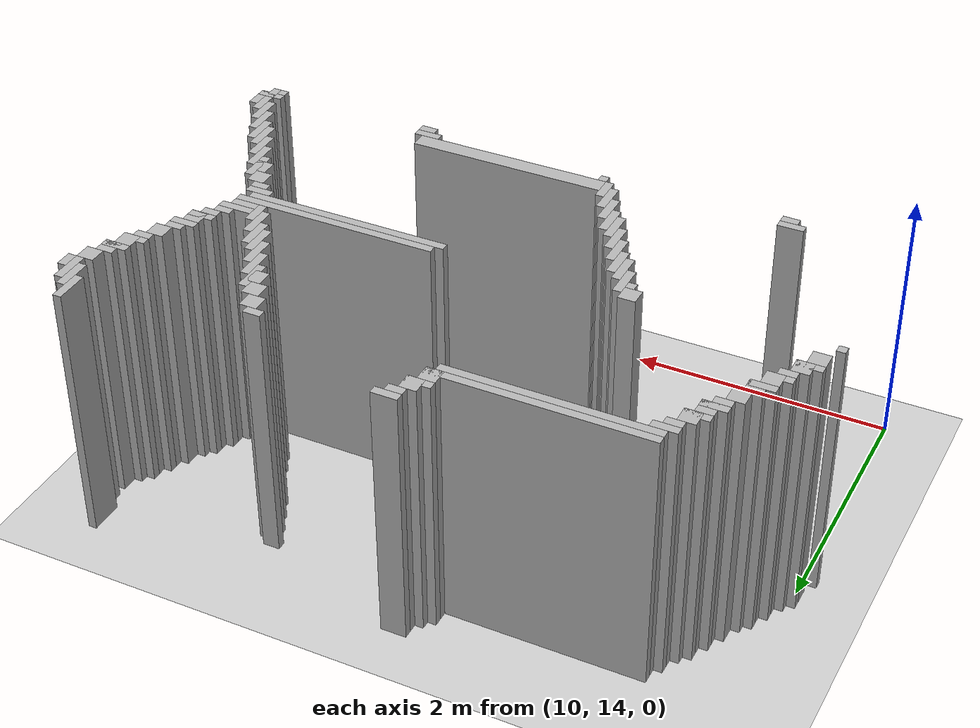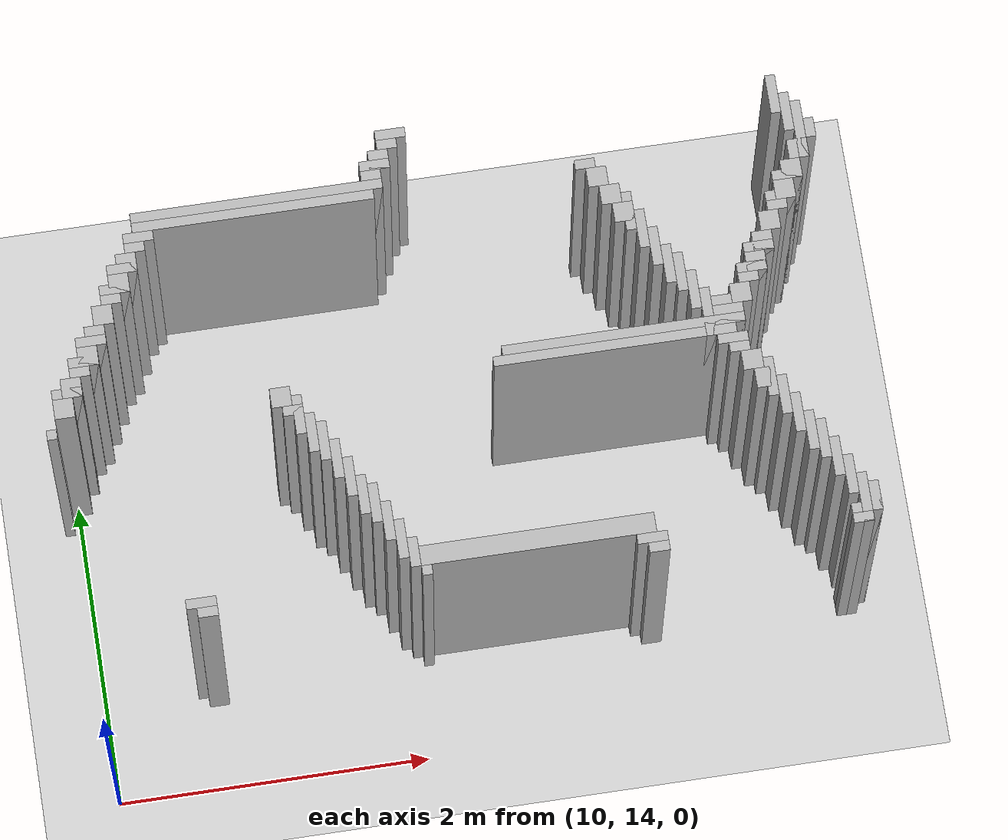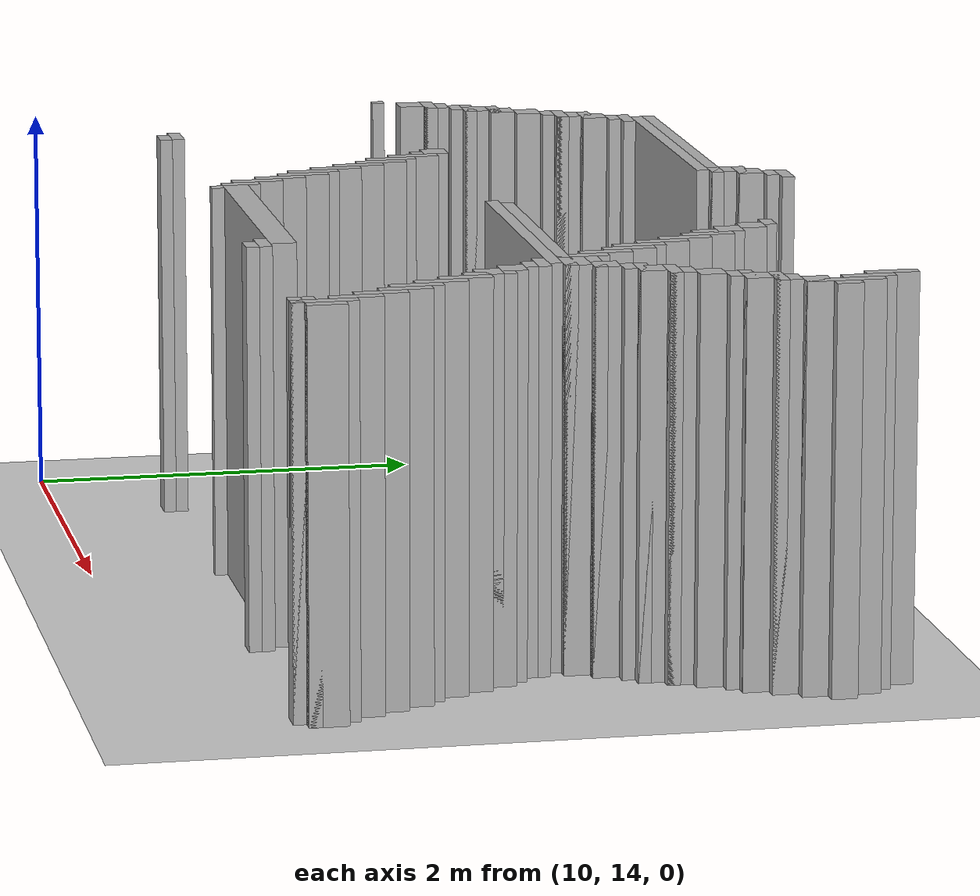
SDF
<sdf version="1.6">
 <world name="slam_world">
  <model name="ground_plane">
   <static>true</static>
   <link name="link">
    <collision name="collision">
     <geometry><plane><normal>0 0 1</normal><size>100 100</size></plane></geometry>
    </collision>
    <visual name="visual">
     <geometry><plane><normal>0 0 1</normal><size>100 100</size></plane></geometry>
     <material>
      <ambient>0.8 0.8 0.8 1</ambient>
      <diffuse>0.8 0.8 0.8 1</diffuse>
      <specular>0.8 0.8 0.8 1</specular>
     </material>
    </visual>
   </link>
  </model>
  <model name="wall_675">
   <static>true</static>
   <pose>12.287234042553191 17.52127659574468 1.0 0 0 0</pose>
   <link name="link">
    <collision name="collision">
     <geometry><box><size>0.19148936170212766 0.06382978723404255 2.0</size></box></geometry>
    </collision>
    <visual name="visual">
     <geometry><box><size>0.19148936170212766 0.06382978723404255 2.0</size></box></geometry>
     <material><ambient>0.5 0.5 0.5 1</ambient><diffuse>0.7 0.7 0.7 1</diffuse></material>
    </visual>
   </link>
  </model>
  <model name="wall_676">
   <static>true</static>
   <pose>14.712765957446807 17.425531914893615 1.0 0 0 0</pose>
   <link name="link">
    <collision name="collision">
     <geometry><box><size>0.06382978723404255 0.2553191489361702 2.0</size></box></geometry>
    </collision>
    <visual name="visual">
     <geometry><box><size>0.06382978723404255 0.2553191489361702 2.0</size></box></geometry>
     <material><ambient>0.5 0.5 0.5 1</ambient><diffuse>0.7 0.7 0.7 1</diffuse></material>
    </visual>
   </link>
  </model>
  <model name="wall_680">
   <static>true</static>
   <pose>12.25531914893617 17.457446808510635 1.0 0 0 0</pose>
   <link name="link">
    <collision name="collision">
     <geometry><box><size>0.1276595744680851 0.06382978723404255 2.0</size></box></geometry>
    </collision>
    <visual name="visual">
     <geometry><box><size>0.1276595744680851 0.06382978723404255 2.0</size></box></geometry>
     <material><ambient>0.5 0.5 0.5 1</ambient><diffuse>0.7 0.7 0.7 1</diffuse></material>
    </visual>
   </link>
  </model>
  <model name="wall_688">
   <static>true</static>
   <pose>12.191489361702127 17.361702127659573 1.0 0 0 0</pose>
   <link name="link">
    <collision name="collision">
     <geometry><box><size>0.1276595744680851 0.1276595744680851 2.0</size></box></geometry>
    </collision>
    <visual name="visual">
     <geometry><box><size>0.1276595744680851 0.1276595744680851 2.0</size></box></geometry>
     <material><ambient>0.5 0.5 0.5 1</ambient><diffuse>0.7 0.7 0.7 1</diffuse></material>
    </visual>
   </link>
  </model>
  <model name="wall_689">
   <static>true</static>
   <pose>14.77659574468085 17.29787234042553 1.0 0 0 0</pose>
   <link name="link">
    <collision name="collision">
     <geometry><box><size>0.06382978723404255 0.2553191489361702 2.0</size></box></geometry>
    </collision>
    <visual name="visual">
     <geometry><box><size>0.06382978723404255 0.2553191489361702 2.0</size></box></geometry>
     <material><ambient>0.5 0.5 0.5 1</ambient><diffuse>0.7 0.7 0.7 1</diffuse></material>
    </visual>
   </link>
  </model>
  <model name="wall_695">
   <static>true</static>
   <pose>12.159574468085106 17.329787234042552 1.0 0 0 0</pose>
   <link name="link">
    <collision name="collision">
     <geometry><box><size>0.19148936170212766 0.06382978723404255 2.0</size></box></geometry>
    </collision>
    <visual name="visual">
     <geometry><box><size>0.19148936170212766 0.06382978723404255 2.0</size></box></geometry>
     <material><ambient>0.5 0.5 0.5 1</ambient><diffuse>0.7 0.7 0.7 1</diffuse></material>
    </visual>
   </link>
  </model>
  <model name="wall_696">
   <static>true</static>
   <pose>14.840425531914892 17.170212765957444 1.0 0 0 0</pose>
   <link name="link">
    <collision name="collision">
     <geometry><box><size>0.06382978723404255 0.3829787234042553 2.0</size></box></geometry>
    </collision>
    <visual name="visual">
     <geometry><box><size>0.06382978723404255 0.3829787234042553 2.0</size></box></geometry>
     <material><ambient>0.5 0.5 0.5 1</ambient><diffuse>0.7 0.7 0.7 1</diffuse></material>
    </visual>
   </link>
  </model>
  <model name="wall_700">
   <static>true</static>
   <pose>12.127659574468083 17.23404255319149 1.0 0 0 0</pose>
   <link name="link">
    <collision name="collision">
     <geometry><box><size>0.1276595744680851 0.1276595744680851 2.0</size></box></geometry>
    </collision>
    <visual name="visual">
     <geometry><box><size>0.1276595744680851 0.1276595744680851 2.0</size></box></geometry>
     <material><ambient>0.5 0.5 0.5 1</ambient><diffuse>0.7 0.7 0.7 1</diffuse></material>
    </visual>
   </link>
  </model>
  <model name="wall_706">
   <static>true</static>
   <pose>11.393617021276595 17.202127659574465 1.0 0 0 0</pose>
   <link name="link">
    <collision name="collision">
     <geometry><box><size>1.5957446808510638 0.06382978723404255 2.0</size></box></geometry>
    </collision>
    <visual name="visual">
     <geometry><box><size>1.5957446808510638 0.06382978723404255 2.0</size></box></geometry>
     <material><ambient>0.5 0.5 0.5 1</ambient><diffuse>0.7 0.7 0.7 1</diffuse></material>
    </visual>
   </link>
  </model>
  <model name="wall_707">
   <static>true</static>
   <pose>14.904255319148936 17.170212765957444 1.0 0 0 0</pose>
   <link name="link">
    <collision name="collision">
     <geometry><box><size>0.06382978723404255 0.1276595744680851 2.0</size></box></geometry>
    </collision>
    <visual name="visual">
     <geometry><box><size>0.06382978723404255 0.1276595744680851 2.0</size></box></geometry>
     <material><ambient>0.5 0.5 0.5 1</ambient><diffuse>0.7 0.7 0.7 1</diffuse></material>
    </visual>
   </link>
  </model>
  <model name="wall_711">
   <static>true</static>
   <pose>11.361702127659573 17.138297872340424 1.0 0 0 0</pose>
   <link name="link">
    <collision name="collision">
     <geometry><box><size>1.5319148936170213 0.06382978723404255 2.0</size></box></geometry>
    </collision>
    <visual name="visual">
     <geometry><box><size>1.5319148936170213 0.06382978723404255 2.0</size></box></geometry>
     <material><ambient>0.5 0.5 0.5 1</ambient><diffuse>0.7 0.7 0.7 1</diffuse></material>
    </visual>
   </link>
  </model>
  <model name="wall_712">
   <static>true</static>
   <pose>13.468085106382977 17.138297872340424 1.0 0 0 0</pose>
   <link name="link">
    <collision name="collision">
     <geometry><box><size>0.1276595744680851 0.06382978723404255 2.0</size></box></geometry>
    </collision>
    <visual name="visual">
     <geometry><box><size>0.1276595744680851 0.06382978723404255 2.0</size></box></geometry>
     <material><ambient>0.5 0.5 0.5 1</ambient><diffuse>0.7 0.7 0.7 1</diffuse></material>
    </visual>
   </link>
  </model>
  <model name="wall_718">
   <static>true</static>
   <pose>10.627659574468085 17.074468085106382 1.0 0 0 0</pose>
   <link name="link">
    <collision name="collision">
     <geometry><box><size>0.19148936170212766 0.06382978723404255 2.0</size></box></geometry>
    </collision>
    <visual name="visual">
     <geometry><box><size>0.19148936170212766 0.06382978723404255 2.0</size></box></geometry>
     <material><ambient>0.5 0.5 0.5 1</ambient><diffuse>0.7 0.7 0.7 1</diffuse></material>
    </visual>
   </link>
  </model>
  <model name="wall_719">
   <static>true</static>
   <pose>13.53191489361702 17.04255319148936 1.0 0 0 0</pose>
   <link name="link">
    <collision name="collision">
     <geometry><box><size>0.1276595744680851 0.1276595744680851 2.0</size></box></geometry>
    </collision>
    <visual name="visual">
     <geometry><box><size>0.1276595744680851 0.1276595744680851 2.0</size></box></geometry>
     <material><ambient>0.5 0.5 0.5 1</ambient><diffuse>0.7 0.7 0.7 1</diffuse></material>
    </visual>
   </link>
  </model>
  <model name="wall_720">
   <static>true</static>
   <pose>14.808510638297872 17.04255319148936 1.0 0 0 0</pose>
   <link name="link">
    <collision name="collision">
     <geometry><box><size>0.1276595744680851 0.1276595744680851 2.0</size></box></geometry>
    </collision>
    <visual name="visual">
     <geometry><box><size>0.1276595744680851 0.1276595744680851 2.0</size></box></geometry>
     <material><ambient>0.5 0.5 0.5 1</ambient><diffuse>0.7 0.7 0.7 1</diffuse></material>
    </visual>
   </link>
  </model>
  <model name="wall_723">
   <static>true</static>
   <pose>10.595744680851062 17.01063829787234 1.0 0 0 0</pose>
   <link name="link">
    <collision name="collision">
     <geometry><box><size>0.1276595744680851 0.06382978723404255 2.0</size></box></geometry>
    </collision>
    <visual name="visual">
     <geometry><box><size>0.1276595744680851 0.06382978723404255 2.0</size></box></geometry>
     <material><ambient>0.5 0.5 0.5 1</ambient><diffuse>0.7 0.7 0.7 1</diffuse></material>
    </visual>
   </link>
  </model>
  <model name="wall_731">
   <static>true</static>
   <pose>10.53191489361702 16.914893617021274 1.0 0 0 0</pose>
   <link name="link">
    <collision name="collision">
     <geometry><box><size>0.1276595744680851 0.1276595744680851 2.0</size></box></geometry>
    </collision>
    <visual name="visual">
     <geometry><box><size>0.1276595744680851 0.1276595744680851 2.0</size></box></geometry>
     <material><ambient>0.5 0.5 0.5 1</ambient><diffuse>0.7 0.7 0.7 1</diffuse></material>
    </visual>
   </link>
  </model>
  <model name="wall_732">
   <static>true</static>
   <pose>13.595744680851062 16.914893617021274 1.0 0 0 0</pose>
   <link name="link">
    <collision name="collision">
     <geometry><box><size>0.1276595744680851 0.1276595744680851 2.0</size></box></geometry>
    </collision>
    <visual name="visual">
     <geometry><box><size>0.1276595744680851 0.1276595744680851 2.0</size></box></geometry>
     <material><ambient>0.5 0.5 0.5 1</ambient><diffuse>0.7 0.7 0.7 1</diffuse></material>
    </visual>
   </link>
  </model>
  <model name="wall_733">
   <static>true</static>
   <pose>14.744680851063828 16.914893617021274 1.0 0 0 0</pose>
   <link name="link">
    <collision name="collision">
     <geometry><box><size>0.1276595744680851 0.1276595744680851 2.0</size></box></geometry>
    </collision>
    <visual name="visual">
     <geometry><box><size>0.1276595744680851 0.1276595744680851 2.0</size></box></geometry>
     <material><ambient>0.5 0.5 0.5 1</ambient><diffuse>0.7 0.7 0.7 1</diffuse></material>
    </visual>
   </link>
  </model>
  <model name="wall_741">
   <static>true</static>
   <pose>10.5 16.882978723404253 1.0 0 0 0</pose>
   <link name="link">
    <collision name="collision">
     <geometry><box><size>0.19148936170212766 0.06382978723404255 2.0</size></box></geometry>
    </collision>
    <visual name="visual">
     <geometry><box><size>0.19148936170212766 0.06382978723404255 2.0</size></box></geometry>
     <material><ambient>0.5 0.5 0.5 1</ambient><diffuse>0.7 0.7 0.7 1</diffuse></material>
    </visual>
   </link>
  </model>
  <model name="wall_742">
   <static>true</static>
   <pose>13.691489361702127 16.78723404255319 1.0 0 0 0</pose>
   <link name="link">
    <collision name="collision">
     <geometry><box><size>0.06382978723404255 0.2553191489361702 2.0</size></box></geometry>
    </collision>
    <visual name="visual">
     <geometry><box><size>0.06382978723404255 0.2553191489361702 2.0</size></box></geometry>
     <material><ambient>0.5 0.5 0.5 1</ambient><diffuse>0.7 0.7 0.7 1</diffuse></material>
    </visual>
   </link>
  </model>
  <model name="wall_743">
   <static>true</static>
   <pose>14.712765957446807 16.882978723404253 1.0 0 0 0</pose>
   <link name="link">
    <collision name="collision">
     <geometry><box><size>0.19148936170212766 0.06382978723404255 2.0</size></box></geometry>
    </collision>
    <visual name="visual">
     <geometry><box><size>0.19148936170212766 0.06382978723404255 2.0</size></box></geometry>
     <material><ambient>0.5 0.5 0.5 1</ambient><diffuse>0.7 0.7 0.7 1</diffuse></material>
    </visual>
   </link>
  </model>
  <model name="wall_751">
   <static>true</static>
   <pose>10.468085106382977 16.78723404255319 1.0 0 0 0</pose>
   <link name="link">
    <collision name="collision">
     <geometry><box><size>0.1276595744680851 0.1276595744680851 2.0</size></box></geometry>
    </collision>
    <visual name="visual">
     <geometry><box><size>0.1276595744680851 0.1276595744680851 2.0</size></box></geometry>
     <material><ambient>0.5 0.5 0.5 1</ambient><diffuse>0.7 0.7 0.7 1</diffuse></material>
    </visual>
   </link>
  </model>
  <model name="wall_752">
   <static>true</static>
   <pose>13.659574468085106 16.78723404255319 1.0 0 0 0</pose>
   <link name="link">
    <collision name="collision">
     <geometry><box><size>0.1276595744680851 0.1276595744680851 2.0</size></box></geometry>
    </collision>
    <visual name="visual">
     <geometry><box><size>0.1276595744680851 0.1276595744680851 2.0</size></box></geometry>
     <material><ambient>0.5 0.5 0.5 1</ambient><diffuse>0.7 0.7 0.7 1</diffuse></material>
    </visual>
   </link>
  </model>
  <model name="wall_753">
   <static>true</static>
   <pose>14.680851063829786 16.78723404255319 1.0 0 0 0</pose>
   <link name="link">
    <collision name="collision">
     <geometry><box><size>0.1276595744680851 0.1276595744680851 2.0</size></box></geometry>
    </collision>
    <visual name="visual">
     <geometry><box><size>0.1276595744680851 0.1276595744680851 2.0</size></box></geometry>
     <material><ambient>0.5 0.5 0.5 1</ambient><diffuse>0.7 0.7 0.7 1</diffuse></material>
    </visual>
   </link>
  </model>
  <model name="wall_761">
   <static>true</static>
   <pose>10.436170212765957 16.75531914893617 1.0 0 0 0</pose>
   <link name="link">
    <collision name="collision">
     <geometry><box><size>0.19148936170212766 0.06382978723404255 2.0</size></box></geometry>
    </collision>
    <visual name="visual">
     <geometry><box><size>0.19148936170212766 0.06382978723404255 2.0</size></box></geometry>
     <material><ambient>0.5 0.5 0.5 1</ambient><diffuse>0.7 0.7 0.7 1</diffuse></material>
    </visual>
   </link>
  </model>
  <model name="wall_762">
   <static>true</static>
   <pose>13.755319148936168 16.659574468085104 1.0 0 0 0</pose>
   <link name="link">
    <collision name="collision">
     <geometry><box><size>0.06382978723404255 0.2553191489361702 2.0</size></box></geometry>
    </collision>
    <visual name="visual">
     <geometry><box><size>0.06382978723404255 0.2553191489361702 2.0</size></box></geometry>
     <material><ambient>0.5 0.5 0.5 1</ambient><diffuse>0.7 0.7 0.7 1</diffuse></material>
    </visual>
   </link>
  </model>
  <model name="wall_763">
   <static>true</static>
   <pose>14.648936170212766 16.75531914893617 1.0 0 0 0</pose>
   <link name="link">
    <collision name="collision">
     <geometry><box><size>0.19148936170212766 0.06382978723404255 2.0</size></box></geometry>
    </collision>
    <visual name="visual">
     <geometry><box><size>0.19148936170212766 0.06382978723404255 2.0</size></box></geometry>
     <material><ambient>0.5 0.5 0.5 1</ambient><diffuse>0.7 0.7 0.7 1</diffuse></material>
    </visual>
   </link>
  </model>
  <model name="wall_769">
   <static>true</static>
   <pose>10.404255319148936 16.691489361702125 1.0 0 0 0</pose>
   <link name="link">
    <collision name="collision">
     <geometry><box><size>0.1276595744680851 0.06382978723404255 2.0</size></box></geometry>
    </collision>
    <visual name="visual">
     <geometry><box><size>0.1276595744680851 0.06382978723404255 2.0</size></box></geometry>
     <material><ambient>0.5 0.5 0.5 1</ambient><diffuse>0.7 0.7 0.7 1</diffuse></material>
    </visual>
   </link>
  </model>
  <model name="wall_770">
   <static>true</static>
   <pose>14.617021276595743 16.691489361702125 1.0 0 0 0</pose>
   <link name="link">
    <collision name="collision">
     <geometry><box><size>0.1276595744680851 0.06382978723404255 2.0</size></box></geometry>
    </collision>
    <visual name="visual">
     <geometry><box><size>0.1276595744680851 0.06382978723404255 2.0</size></box></geometry>
     <material><ambient>0.5 0.5 0.5 1</ambient><diffuse>0.7 0.7 0.7 1</diffuse></material>
    </visual>
   </link>
  </model>
  <model name="wall_778">
   <static>true</static>
   <pose>10.340425531914892 16.595744680851062 1.0 0 0 0</pose>
   <link name="link">
    <collision name="collision">
     <geometry><box><size>0.1276595744680851 0.1276595744680851 2.0</size></box></geometry>
    </collision>
    <visual name="visual">
     <geometry><box><size>0.1276595744680851 0.1276595744680851 2.0</size></box></geometry>
     <material><ambient>0.5 0.5 0.5 1</ambient><diffuse>0.7 0.7 0.7 1</diffuse></material>
    </visual>
   </link>
  </model>
  <model name="wall_779">
   <static>true</static>
   <pose>13.819148936170212 16.53191489361702 1.0 0 0 0</pose>
   <link name="link">
    <collision name="collision">
     <geometry><box><size>0.06382978723404255 0.2553191489361702 2.0</size></box></geometry>
    </collision>
    <visual name="visual">
     <geometry><box><size>0.06382978723404255 0.2553191489361702 2.0</size></box></geometry>
     <material><ambient>0.5 0.5 0.5 1</ambient><diffuse>0.7 0.7 0.7 1</diffuse></material>
    </visual>
   </link>
  </model>
  <model name="wall_780">
   <static>true</static>
   <pose>14.553191489361701 16.595744680851062 1.0 0 0 0</pose>
   <link name="link">
    <collision name="collision">
     <geometry><box><size>0.1276595744680851 0.1276595744680851 2.0</size></box></geometry>
    </collision>
    <visual name="visual">
     <geometry><box><size>0.1276595744680851 0.1276595744680851 2.0</size></box></geometry>
     <material><ambient>0.5 0.5 0.5 1</ambient><diffuse>0.7 0.7 0.7 1</diffuse></material>
    </visual>
   </link>
  </model>
  <model name="wall_788">
   <static>true</static>
   <pose>10.27659574468085 16.46808510638298 1.0 0 0 0</pose>
   <link name="link">
    <collision name="collision">
     <geometry><box><size>0.1276595744680851 0.1276595744680851 2.0</size></box></geometry>
    </collision>
    <visual name="visual">
     <geometry><box><size>0.1276595744680851 0.1276595744680851 2.0</size></box></geometry>
     <material><ambient>0.5 0.5 0.5 1</ambient><diffuse>0.7 0.7 0.7 1</diffuse></material>
    </visual>
   </link>
  </model>
  <model name="wall_789">
   <static>true</static>
   <pose>13.882978723404253 16.404255319148934 1.0 0 0 0</pose>
   <link name="link">
    <collision name="collision">
     <geometry><box><size>0.06382978723404255 0.2553191489361702 2.0</size></box></geometry>
    </collision>
    <visual name="visual">
     <geometry><box><size>0.06382978723404255 0.2553191489361702 2.0</size></box></geometry>
     <material><ambient>0.5 0.5 0.5 1</ambient><diffuse>0.7 0.7 0.7 1</diffuse></material>
    </visual>
   </link>
  </model>
  <model name="wall_790">
   <static>true</static>
   <pose>14.489361702127658 16.46808510638298 1.0 0 0 0</pose>
   <link name="link">
    <collision name="collision">
     <geometry><box><size>0.1276595744680851 0.1276595744680851 2.0</size></box></geometry>
    </collision>
    <visual name="visual">
     <geometry><box><size>0.1276595744680851 0.1276595744680851 2.0</size></box></geometry>
     <material><ambient>0.5 0.5 0.5 1</ambient><diffuse>0.7 0.7 0.7 1</diffuse></material>
    </visual>
   </link>
  </model>
  <model name="wall_798">
   <static>true</static>
   <pose>10.24468085106383 16.436170212765955 1.0 0 0 0</pose>
   <link name="link">
    <collision name="collision">
     <geometry><box><size>0.19148936170212766 0.06382978723404255 2.0</size></box></geometry>
    </collision>
    <visual name="visual">
     <geometry><box><size>0.19148936170212766 0.06382978723404255 2.0</size></box></geometry>
     <material><ambient>0.5 0.5 0.5 1</ambient><diffuse>0.7 0.7 0.7 1</diffuse></material>
    </visual>
   </link>
  </model>
  <model name="wall_799">
   <static>true</static>
   <pose>13.946808510638297 16.340425531914892 1.0 0 0 0</pose>
   <link name="link">
    <collision name="collision">
     <geometry><box><size>0.06382978723404255 0.2553191489361702 2.0</size></box></geometry>
    </collision>
    <visual name="visual">
     <geometry><box><size>0.06382978723404255 0.2553191489361702 2.0</size></box></geometry>
     <material><ambient>0.5 0.5 0.5 1</ambient><diffuse>0.7 0.7 0.7 1</diffuse></material>
    </visual>
   </link>
  </model>
  <model name="wall_800">
   <static>true</static>
   <pose>14.457446808510637 16.436170212765955 1.0 0 0 0</pose>
   <link name="link">
    <collision name="collision">
     <geometry><box><size>0.19148936170212766 0.06382978723404255 2.0</size></box></geometry>
    </collision>
    <visual name="visual">
     <geometry><box><size>0.19148936170212766 0.06382978723404255 2.0</size></box></geometry>
     <material><ambient>0.5 0.5 0.5 1</ambient><diffuse>0.7 0.7 0.7 1</diffuse></material>
    </visual>
   </link>
  </model>
  <model name="wall_806">
   <static>true</static>
   <pose>10.212765957446807 16.340425531914892 1.0 0 0 0</pose>
   <link name="link">
    <collision name="collision">
     <geometry><box><size>0.1276595744680851 0.1276595744680851 2.0</size></box></geometry>
    </collision>
    <visual name="visual">
     <geometry><box><size>0.1276595744680851 0.1276595744680851 2.0</size></box></geometry>
     <material><ambient>0.5 0.5 0.5 1</ambient><diffuse>0.7 0.7 0.7 1</diffuse></material>
    </visual>
   </link>
  </model>
  <model name="wall_807">
   <static>true</static>
   <pose>14.425531914893616 16.340425531914892 1.0 0 0 0</pose>
   <link name="link">
    <collision name="collision">
     <geometry><box><size>0.1276595744680851 0.1276595744680851 2.0</size></box></geometry>
    </collision>
    <visual name="visual">
     <geometry><box><size>0.1276595744680851 0.1276595744680851 2.0</size></box></geometry>
     <material><ambient>0.5 0.5 0.5 1</ambient><diffuse>0.7 0.7 0.7 1</diffuse></material>
    </visual>
   </link>
  </model>
  <model name="wall_815">
   <static>true</static>
   <pose>10.180851063829786 16.30851063829787 1.0 0 0 0</pose>
   <link name="link">
    <collision name="collision">
     <geometry><box><size>0.19148936170212766 0.06382978723404255 2.0</size></box></geometry>
    </collision>
    <visual name="visual">
     <geometry><box><size>0.19148936170212766 0.06382978723404255 2.0</size></box></geometry>
     <material><ambient>0.5 0.5 0.5 1</ambient><diffuse>0.7 0.7 0.7 1</diffuse></material>
    </visual>
   </link>
  </model>
  <model name="wall_816">
   <static>true</static>
   <pose>14.010638297872338 16.212765957446805 1.0 0 0 0</pose>
   <link name="link">
    <collision name="collision">
     <geometry><box><size>0.06382978723404255 0.2553191489361702 2.0</size></box></geometry>
    </collision>
    <visual name="visual">
     <geometry><box><size>0.06382978723404255 0.2553191489361702 2.0</size></box></geometry>
     <material><ambient>0.5 0.5 0.5 1</ambient><diffuse>0.7 0.7 0.7 1</diffuse></material>
    </visual>
   </link>
  </model>
  <model name="wall_817">
   <static>true</static>
   <pose>14.393617021276595 16.30851063829787 1.0 0 0 0</pose>
   <link name="link">
    <collision name="collision">
     <geometry><box><size>0.19148936170212766 0.06382978723404255 2.0</size></box></geometry>
    </collision>
    <visual name="visual">
     <geometry><box><size>0.19148936170212766 0.06382978723404255 2.0</size></box></geometry>
     <material><ambient>0.5 0.5 0.5 1</ambient><diffuse>0.7 0.7 0.7 1</diffuse></material>
    </visual>
   </link>
  </model>
  <model name="wall_823">
   <static>true</static>
   <pose>10.148936170212766 16.24468085106383 1.0 0 0 0</pose>
   <link name="link">
    <collision name="collision">
     <geometry><box><size>0.1276595744680851 0.06382978723404255 2.0</size></box></geometry>
    </collision>
    <visual name="visual">
     <geometry><box><size>0.1276595744680851 0.06382978723404255 2.0</size></box></geometry>
     <material><ambient>0.5 0.5 0.5 1</ambient><diffuse>0.7 0.7 0.7 1</diffuse></material>
    </visual>
   </link>
  </model>
  <model name="wall_824">
   <static>true</static>
   <pose>14.361702127659573 16.24468085106383 1.0 0 0 0</pose>
   <link name="link">
    <collision name="collision">
     <geometry><box><size>0.1276595744680851 0.06382978723404255 2.0</size></box></geometry>
    </collision>
    <visual name="visual">
     <geometry><box><size>0.1276595744680851 0.06382978723404255 2.0</size></box></geometry>
     <material><ambient>0.5 0.5 0.5 1</ambient><diffuse>0.7 0.7 0.7 1</diffuse></material>
    </visual>
   </link>
  </model>
  <model name="wall_832">
   <static>true</static>
   <pose>10.085106382978722 16.148936170212764 1.0 0 0 0</pose>
   <link name="link">
    <collision name="collision">
     <geometry><box><size>0.1276595744680851 0.1276595744680851 2.0</size></box></geometry>
    </collision>
    <visual name="visual">
     <geometry><box><size>0.1276595744680851 0.1276595744680851 2.0</size></box></geometry>
     <material><ambient>0.5 0.5 0.5 1</ambient><diffuse>0.7 0.7 0.7 1</diffuse></material>
    </visual>
   </link>
  </model>
  <model name="wall_833">
   <static>true</static>
   <pose>14.074468085106382 16.0531914893617 1.0 0 0 0</pose>
   <link name="link">
    <collision name="collision">
     <geometry><box><size>0.06382978723404255 0.3191489361702127 2.0</size></box></geometry>
    </collision>
    <visual name="visual">
     <geometry><box><size>0.06382978723404255 0.3191489361702127 2.0</size></box></geometry>
     <material><ambient>0.5 0.5 0.5 1</ambient><diffuse>0.7 0.7 0.7 1</diffuse></material>
    </visual>
   </link>
  </model>
  <model name="wall_834">
   <static>true</static>
   <pose>14.297872340425531 16.148936170212764 1.0 0 0 0</pose>
   <link name="link">
    <collision name="collision">
     <geometry><box><size>0.1276595744680851 0.1276595744680851 2.0</size></box></geometry>
    </collision>
    <visual name="visual">
     <geometry><box><size>0.1276595744680851 0.1276595744680851 2.0</size></box></geometry>
     <material><ambient>0.5 0.5 0.5 1</ambient><diffuse>0.7 0.7 0.7 1</diffuse></material>
    </visual>
   </link>
  </model>
  <model name="wall_841">
   <static>true</static>
   <pose>10.053191489361701 16.117021276595743 1.0 0 0 0</pose>
   <link name="link">
    <collision name="collision">
     <geometry><box><size>0.19148936170212766 0.06382978723404255 2.0</size></box></geometry>
    </collision>
    <visual name="visual">
     <geometry><box><size>0.19148936170212766 0.06382978723404255 2.0</size></box></geometry>
     <material><ambient>0.5 0.5 0.5 1</ambient><diffuse>0.7 0.7 0.7 1</diffuse></material>
    </visual>
   </link>
  </model>
  <model name="wall_842">
   <static>true</static>
   <pose>14.234042553191488 16.117021276595743 1.0 0 0 0</pose>
   <link name="link">
    <collision name="collision">
     <geometry><box><size>0.2553191489361702 0.06382978723404255 2.0</size></box></geometry>
    </collision>
    <visual name="visual">
     <geometry><box><size>0.2553191489361702 0.06382978723404255 2.0</size></box></geometry>
     <material><ambient>0.5 0.5 0.5 1</ambient><diffuse>0.7 0.7 0.7 1</diffuse></material>
    </visual>
   </link>
  </model>
  <model name="wall_848">
   <static>true</static>
   <pose>10.02127659574468 16.02127659574468 1.0 0 0 0</pose>
   <link name="link">
    <collision name="collision">
     <geometry><box><size>0.1276595744680851 0.1276595744680851 2.0</size></box></geometry>
    </collision>
    <visual name="visual">
     <geometry><box><size>0.1276595744680851 0.1276595744680851 2.0</size></box></geometry>
     <material><ambient>0.5 0.5 0.5 1</ambient><diffuse>0.7 0.7 0.7 1</diffuse></material>
    </visual>
   </link>
  </model>
  <model name="wall_849">
   <static>true</static>
   <pose>14.202127659574467 16.02127659574468 1.0 0 0 0</pose>
   <link name="link">
    <collision name="collision">
     <geometry><box><size>0.19148936170212766 0.1276595744680851 2.0</size></box></geometry>
    </collision>
    <visual name="visual">
     <geometry><box><size>0.19148936170212766 0.1276595744680851 2.0</size></box></geometry>
     <material><ambient>0.5 0.5 0.5 1</ambient><diffuse>0.7 0.7 0.7 1</diffuse></material>
    </visual>
   </link>
  </model>
  <model name="wall_856">
   <static>true</static>
   <pose>13.53191489361702 15.989361702127658 1.0 0 0 0</pose>
   <link name="link">
    <collision name="collision">
     <geometry><box><size>1.5319148936170213 0.06382978723404255 2.0</size></box></geometry>
    </collision>
    <visual name="visual">
     <geometry><box><size>1.5319148936170213 0.06382978723404255 2.0</size></box></geometry>
     <material><ambient>0.5 0.5 0.5 1</ambient><diffuse>0.7 0.7 0.7 1</diffuse></material>
    </visual>
   </link>
  </model>
  <model name="wall_862">
   <static>true</static>
   <pose>11.361702127659573 15.893617021276594 1.0 0 0 0</pose>
   <link name="link">
    <collision name="collision">
     <geometry><box><size>0.1276595744680851 0.1276595744680851 2.0</size></box></geometry>
    </collision>
    <visual name="visual">
     <geometry><box><size>0.1276595744680851 0.1276595744680851 2.0</size></box></geometry>
     <material><ambient>0.5 0.5 0.5 1</ambient><diffuse>0.7 0.7 0.7 1</diffuse></material>
    </visual>
   </link>
  </model>
  <model name="wall_863">
   <static>true</static>
   <pose>13.468085106382977 15.925531914893616 1.0 0 0 0</pose>
   <link name="link">
    <collision name="collision">
     <geometry><box><size>1.5319148936170213 0.06382978723404255 2.0</size></box></geometry>
    </collision>
    <visual name="visual">
     <geometry><box><size>1.5319148936170213 0.06382978723404255 2.0</size></box></geometry>
     <material><ambient>0.5 0.5 0.5 1</ambient><diffuse>0.7 0.7 0.7 1</diffuse></material>
    </visual>
   </link>
  </model>
  <model name="wall_867">
   <static>true</static>
   <pose>9.925531914893616 15.861702127659573 1.0 0 0 0</pose>
   <link name="link">
    <collision name="collision">
     <geometry><box><size>0.06382978723404255 0.06382978723404255 2.0</size></box></geometry>
    </collision>
    <visual name="visual">
     <geometry><box><size>0.06382978723404255 0.06382978723404255 2.0</size></box></geometry>
     <material><ambient>0.5 0.5 0.5 1</ambient><diffuse>0.7 0.7 0.7 1</diffuse></material>
    </visual>
   </link>
  </model>
  <model name="wall_868">
   <static>true</static>
   <pose>11.457446808510637 15.765957446808509 1.0 0 0 0</pose>
   <link name="link">
    <collision name="collision">
     <geometry><box><size>0.06382978723404255 0.2553191489361702 2.0</size></box></geometry>
    </collision>
    <visual name="visual">
     <geometry><box><size>0.06382978723404255 0.2553191489361702 2.0</size></box></geometry>
     <material><ambient>0.5 0.5 0.5 1</ambient><diffuse>0.7 0.7 0.7 1</diffuse></material>
    </visual>
   </link>
  </model>
  <model name="wall_869">
   <static>true</static>
   <pose>14.202127659574467 15.861702127659573 1.0 0 0 0</pose>
   <link name="link">
    <collision name="collision">
     <geometry><box><size>0.19148936170212766 0.06382978723404255 2.0</size></box></geometry>
    </collision>
    <visual name="visual">
     <geometry><box><size>0.19148936170212766 0.06382978723404255 2.0</size></box></geometry>
     <material><ambient>0.5 0.5 0.5 1</ambient><diffuse>0.7 0.7 0.7 1</diffuse></material>
    </visual>
   </link>
  </model>
  <model name="wall_871">
   <static>true</static>
   <pose>11.425531914893616 15.797872340425531 1.0 0 0 0</pose>
   <link name="link">
    <collision name="collision">
     <geometry><box><size>0.1276595744680851 0.06382978723404255 2.0</size></box></geometry>
    </collision>
    <visual name="visual">
     <geometry><box><size>0.1276595744680851 0.06382978723404255 2.0</size></box></geometry>
     <material><ambient>0.5 0.5 0.5 1</ambient><diffuse>0.7 0.7 0.7 1</diffuse></material>
    </visual>
   </link>
  </model>
  <model name="wall_872">
   <static>true</static>
   <pose>14.234042553191488 15.797872340425531 1.0 0 0 0</pose>
   <link name="link">
    <collision name="collision">
     <geometry><box><size>0.1276595744680851 0.06382978723404255 2.0</size></box></geometry>
    </collision>
    <visual name="visual">
     <geometry><box><size>0.1276595744680851 0.06382978723404255 2.0</size></box></geometry>
     <material><ambient>0.5 0.5 0.5 1</ambient><diffuse>0.7 0.7 0.7 1</diffuse></material>
    </visual>
   </link>
  </model>
  <model name="wall_874">
   <static>true</static>
   <pose>11.52127659574468 15.638297872340424 1.0 0 0 0</pose>
   <link name="link">
    <collision name="collision">
     <geometry><box><size>0.06382978723404255 0.2553191489361702 2.0</size></box></geometry>
    </collision>
    <visual name="visual">
     <geometry><box><size>0.06382978723404255 0.2553191489361702 2.0</size></box></geometry>
     <material><ambient>0.5 0.5 0.5 1</ambient><diffuse>0.7 0.7 0.7 1</diffuse></material>
    </visual>
   </link>
  </model>
  <model name="wall_875">
   <static>true</static>
   <pose>14.297872340425531 15.702127659574467 1.0 0 0 0</pose>
   <link name="link">
    <collision name="collision">
     <geometry><box><size>0.1276595744680851 0.1276595744680851 2.0</size></box></geometry>
    </collision>
    <visual name="visual">
     <geometry><box><size>0.1276595744680851 0.1276595744680851 2.0</size></box></geometry>
     <material><ambient>0.5 0.5 0.5 1</ambient><diffuse>0.7 0.7 0.7 1</diffuse></material>
    </visual>
   </link>
  </model>
  <model name="wall_877">
   <static>true</static>
   <pose>11.585106382978722 15.574468085106382 1.0 0 0 0</pose>
   <link name="link">
    <collision name="collision">
     <geometry><box><size>0.06382978723404255 0.2553191489361702 2.0</size></box></geometry>
    </collision>
    <visual name="visual">
     <geometry><box><size>0.06382978723404255 0.2553191489361702 2.0</size></box></geometry>
     <material><ambient>0.5 0.5 0.5 1</ambient><diffuse>0.7 0.7 0.7 1</diffuse></material>
    </visual>
   </link>
  </model>
  <model name="wall_878">
   <static>true</static>
   <pose>14.393617021276595 15.574468085106382 1.0 0 0 0</pose>
   <link name="link">
    <collision name="collision">
     <geometry><box><size>0.06382978723404255 0.2553191489361702 2.0</size></box></geometry>
    </collision>
    <visual name="visual">
     <geometry><box><size>0.06382978723404255 0.2553191489361702 2.0</size></box></geometry>
     <material><ambient>0.5 0.5 0.5 1</ambient><diffuse>0.7 0.7 0.7 1</diffuse></material>
    </visual>
   </link>
  </model>
  <model name="wall_879">
   <static>true</static>
   <pose>14.361702127659573 15.574468085106382 1.0 0 0 0</pose>
   <link name="link">
    <collision name="collision">
     <geometry><box><size>0.1276595744680851 0.1276595744680851 2.0</size></box></geometry>
    </collision>
    <visual name="visual">
     <geometry><box><size>0.1276595744680851 0.1276595744680851 2.0</size></box></geometry>
     <material><ambient>0.5 0.5 0.5 1</ambient><diffuse>0.7 0.7 0.7 1</diffuse></material>
    </visual>
   </link>
  </model>
  <model name="wall_881">
   <static>true</static>
   <pose>11.648936170212766 15.446808510638297 1.0 0 0 0</pose>
   <link name="link">
    <collision name="collision">
     <geometry><box><size>0.06382978723404255 0.2553191489361702 2.0</size></box></geometry>
    </collision>
    <visual name="visual">
     <geometry><box><size>0.06382978723404255 0.2553191489361702 2.0</size></box></geometry>
     <material><ambient>0.5 0.5 0.5 1</ambient><diffuse>0.7 0.7 0.7 1</diffuse></material>
    </visual>
   </link>
  </model>
  <model name="wall_882">
   <static>true</static>
   <pose>14.457446808510637 15.446808510638297 1.0 0 0 0</pose>
   <link name="link">
    <collision name="collision">
     <geometry><box><size>0.06382978723404255 0.2553191489361702 2.0</size></box></geometry>
    </collision>
    <visual name="visual">
     <geometry><box><size>0.06382978723404255 0.2553191489361702 2.0</size></box></geometry>
     <material><ambient>0.5 0.5 0.5 1</ambient><diffuse>0.7 0.7 0.7 1</diffuse></material>
    </visual>
   </link>
  </model>
  <model name="wall_884">
   <static>true</static>
   <pose>11.712765957446807 15.319148936170212 1.0 0 0 0</pose>
   <link name="link">
    <collision name="collision">
     <geometry><box><size>0.06382978723404255 0.2553191489361702 2.0</size></box></geometry>
    </collision>
    <visual name="visual">
     <geometry><box><size>0.06382978723404255 0.2553191489361702 2.0</size></box></geometry>
     <material><ambient>0.5 0.5 0.5 1</ambient><diffuse>0.7 0.7 0.7 1</diffuse></material>
    </visual>
   </link>
  </model>
  <model name="wall_885">
   <static>true</static>
   <pose>14.52127659574468 15.319148936170212 1.0 0 0 0</pose>
   <link name="link">
    <collision name="collision">
     <geometry><box><size>0.06382978723404255 0.2553191489361702 2.0</size></box></geometry>
    </collision>
    <visual name="visual">
     <geometry><box><size>0.06382978723404255 0.2553191489361702 2.0</size></box></geometry>
     <material><ambient>0.5 0.5 0.5 1</ambient><diffuse>0.7 0.7 0.7 1</diffuse></material>
    </visual>
   </link>
  </model>
  <model name="wall_887">
   <static>true</static>
   <pose>11.77659574468085 15.191489361702127 1.0 0 0 0</pose>
   <link name="link">
    <collision name="collision">
     <geometry><box><size>0.06382978723404255 0.2553191489361702 2.0</size></box></geometry>
    </collision>
    <visual name="visual">
     <geometry><box><size>0.06382978723404255 0.2553191489361702 2.0</size></box></geometry>
     <material><ambient>0.5 0.5 0.5 1</ambient><diffuse>0.7 0.7 0.7 1</diffuse></material>
    </visual>
   </link>
  </model>
  <model name="wall_888">
   <static>true</static>
   <pose>14.585106382978722 15.191489361702127 1.0 0 0 0</pose>
   <link name="link">
    <collision name="collision">
     <geometry><box><size>0.06382978723404255 0.2553191489361702 2.0</size></box></geometry>
    </collision>
    <visual name="visual">
     <geometry><box><size>0.06382978723404255 0.2553191489361702 2.0</size></box></geometry>
     <material><ambient>0.5 0.5 0.5 1</ambient><diffuse>0.7 0.7 0.7 1</diffuse></material>
    </visual>
   </link>
  </model>
  <model name="wall_890">
   <static>true</static>
   <pose>11.840425531914892 15.127659574468083 1.0 0 0 0</pose>
   <link name="link">
    <collision name="collision">
     <geometry><box><size>0.06382978723404255 0.2553191489361702 2.0</size></box></geometry>
    </collision>
    <visual name="visual">
     <geometry><box><size>0.06382978723404255 0.2553191489361702 2.0</size></box></geometry>
     <material><ambient>0.5 0.5 0.5 1</ambient><diffuse>0.7 0.7 0.7 1</diffuse></material>
    </visual>
   </link>
  </model>
  <model name="wall_891">
   <static>true</static>
   <pose>14.648936170212766 15.127659574468083 1.0 0 0 0</pose>
   <link name="link">
    <collision name="collision">
     <geometry><box><size>0.06382978723404255 0.2553191489361702 2.0</size></box></geometry>
    </collision>
    <visual name="visual">
     <geometry><box><size>0.06382978723404255 0.2553191489361702 2.0</size></box></geometry>
     <material><ambient>0.5 0.5 0.5 1</ambient><diffuse>0.7 0.7 0.7 1</diffuse></material>
    </visual>
   </link>
  </model>
  <model name="wall_893">
   <static>true</static>
   <pose>11.904255319148936 14.999999999999998 1.0 0 0 0</pose>
   <link name="link">
    <collision name="collision">
     <geometry><box><size>0.06382978723404255 0.2553191489361702 2.0</size></box></geometry>
    </collision>
    <visual name="visual">
     <geometry><box><size>0.06382978723404255 0.2553191489361702 2.0</size></box></geometry>
     <material><ambient>0.5 0.5 0.5 1</ambient><diffuse>0.7 0.7 0.7 1</diffuse></material>
    </visual>
   </link>
  </model>
  <model name="wall_894">
   <static>true</static>
   <pose>14.712765957446807 14.999999999999998 1.0 0 0 0</pose>
   <link name="link">
    <collision name="collision">
     <geometry><box><size>0.06382978723404255 0.2553191489361702 2.0</size></box></geometry>
    </collision>
    <visual name="visual">
     <geometry><box><size>0.06382978723404255 0.2553191489361702 2.0</size></box></geometry>
     <material><ambient>0.5 0.5 0.5 1</ambient><diffuse>0.7 0.7 0.7 1</diffuse></material>
    </visual>
   </link>
  </model>
  <model name="wall_896">
   <static>true</static>
   <pose>11.968085106382977 14.872340425531913 1.0 0 0 0</pose>
   <link name="link">
    <collision name="collision">
     <geometry><box><size>0.06382978723404255 0.2553191489361702 2.0</size></box></geometry>
    </collision>
    <visual name="visual">
     <geometry><box><size>0.06382978723404255 0.2553191489361702 2.0</size></box></geometry>
     <material><ambient>0.5 0.5 0.5 1</ambient><diffuse>0.7 0.7 0.7 1</diffuse></material>
    </visual>
   </link>
  </model>
  <model name="wall_897">
   <static>true</static>
   <pose>14.77659574468085 14.872340425531913 1.0 0 0 0</pose>
   <link name="link">
    <collision name="collision">
     <geometry><box><size>0.06382978723404255 0.2553191489361702 2.0</size></box></geometry>
    </collision>
    <visual name="visual">
     <geometry><box><size>0.06382978723404255 0.2553191489361702 2.0</size></box></geometry>
     <material><ambient>0.5 0.5 0.5 1</ambient><diffuse>0.7 0.7 0.7 1</diffuse></material>
    </visual>
   </link>
  </model>
  <model name="wall_899">
   <static>true</static>
   <pose>12.03191489361702 14.77659574468085 1.0 0 0 0</pose>
   <link name="link">
    <collision name="collision">
     <geometry><box><size>0.06382978723404255 0.19148936170212766 2.0</size></box></geometry>
    </collision>
    <visual name="visual">
     <geometry><box><size>0.06382978723404255 0.19148936170212766 2.0</size></box></geometry>
     <material><ambient>0.5 0.5 0.5 1</ambient><diffuse>0.7 0.7 0.7 1</diffuse></material>
    </visual>
   </link>
  </model>
  <model name="wall_900">
   <static>true</static>
   <pose>14.840425531914892 14.712765957446807 1.0 0 0 0</pose>
   <link name="link">
    <collision name="collision">
     <geometry><box><size>0.06382978723404255 0.3191489361702127 2.0</size></box></geometry>
    </collision>
    <visual name="visual">
     <geometry><box><size>0.06382978723404255 0.3191489361702127 2.0</size></box></geometry>
     <material><ambient>0.5 0.5 0.5 1</ambient><diffuse>0.7 0.7 0.7 1</diffuse></material>
    </visual>
   </link>
  </model>
  <model name="wall_904">
   <static>true</static>
   <pose>12.797872340425531 14.744680851063828 1.0 0 0 0</pose>
   <link name="link">
    <collision name="collision">
     <geometry><box><size>1.4680851063829785 0.1276595744680851 2.0</size></box></geometry>
    </collision>
    <visual name="visual">
     <geometry><box><size>1.4680851063829785 0.1276595744680851 2.0</size></box></geometry>
     <material><ambient>0.5 0.5 0.5 1</ambient><diffuse>0.7 0.7 0.7 1</diffuse></material>
    </visual>
   </link>
  </model>
  <model name="wall_905">
   <static>true</static>
   <pose>14.904255319148936 14.712765957446807 1.0 0 0 0</pose>
   <link name="link">
    <collision name="collision">
     <geometry><box><size>0.06382978723404255 0.19148936170212766 2.0</size></box></geometry>
    </collision>
    <visual name="visual">
     <geometry><box><size>0.06382978723404255 0.19148936170212766 2.0</size></box></geometry>
     <material><ambient>0.5 0.5 0.5 1</ambient><diffuse>0.7 0.7 0.7 1</diffuse></material>
    </visual>
   </link>
  </model>
  <model name="wall_912">
   <static>true</static>
   <pose>10.691489361702127 14.648936170212766 1.0 0 0 0</pose>
   <link name="link">
    <collision name="collision">
     <geometry><box><size>0.19148936170212766 0.06382978723404255 2.0</size></box></geometry>
    </collision>
    <visual name="visual">
     <geometry><box><size>0.19148936170212766 0.06382978723404255 2.0</size></box></geometry>
     <material><ambient>0.5 0.5 0.5 1</ambient><diffuse>0.7 0.7 0.7 1</diffuse></material>
    </visual>
   </link>
  </model>
  <model name="wall_913">
   <static>true</static>
   <pose>12.095744680851062 14.648936170212766 1.0 0 0 0</pose>
   <link name="link">
    <collision name="collision">
     <geometry><box><size>0.06382978723404255 0.06382978723404255 2.0</size></box></geometry>
    </collision>
    <visual name="visual">
     <geometry><box><size>0.06382978723404255 0.06382978723404255 2.0</size></box></geometry>
     <material><ambient>0.5 0.5 0.5 1</ambient><diffuse>0.7 0.7 0.7 1</diffuse></material>
    </visual>
   </link>
  </model>
  <model name="wall_914">
   <static>true</static>
   <pose>13.499999999999998 14.648936170212766 1.0 0 0 0</pose>
   <link name="link">
    <collision name="collision">
     <geometry><box><size>0.19148936170212766 0.06382978723404255 2.0</size></box></geometry>
    </collision>
    <visual name="visual">
     <geometry><box><size>0.19148936170212766 0.06382978723404255 2.0</size></box></geometry>
     <material><ambient>0.5 0.5 0.5 1</ambient><diffuse>0.7 0.7 0.7 1</diffuse></material>
    </visual>
   </link>
  </model>
  <model name="wall_915">
   <static>true</static>
   <pose>14.840425531914892 14.648936170212766 1.0 0 0 0</pose>
   <link name="link">
    <collision name="collision">
     <geometry><box><size>0.19148936170212766 0.06382978723404255 2.0</size></box></geometry>
    </collision>
    <visual name="visual">
     <geometry><box><size>0.19148936170212766 0.06382978723404255 2.0</size></box></geometry>
     <material><ambient>0.5 0.5 0.5 1</ambient><diffuse>0.7 0.7 0.7 1</diffuse></material>
    </visual>
   </link>
  </model>
  <model name="wall_920">
   <static>true</static>
   <pose>10.723404255319148 14.585106382978722 1.0 0 0 0</pose>
   <link name="link">
    <collision name="collision">
     <geometry><box><size>0.1276595744680851 0.06382978723404255 2.0</size></box></geometry>
    </collision>
    <visual name="visual">
     <geometry><box><size>0.1276595744680851 0.06382978723404255 2.0</size></box></geometry>
     <material><ambient>0.5 0.5 0.5 1</ambient><diffuse>0.7 0.7 0.7 1</diffuse></material>
    </visual>
   </link>
  </model>
  <model name="wall_921">
   <static>true</static>
   <pose>13.53191489361702 14.585106382978722 1.0 0 0 0</pose>
   <link name="link">
    <collision name="collision">
     <geometry><box><size>0.1276595744680851 0.06382978723404255 2.0</size></box></geometry>
    </collision>
    <visual name="visual">
     <geometry><box><size>0.1276595744680851 0.06382978723404255 2.0</size></box></geometry>
     <material><ambient>0.5 0.5 0.5 1</ambient><diffuse>0.7 0.7 0.7 1</diffuse></material>
    </visual>
   </link>
  </model>
  <model name="wall_922">
   <static>true</static>
   <pose>14.808510638297872 14.585106382978722 1.0 0 0 0</pose>
   <link name="link">
    <collision name="collision">
     <geometry><box><size>0.1276595744680851 0.06382978723404255 2.0</size></box></geometry>
    </collision>
    <visual name="visual">
     <geometry><box><size>0.1276595744680851 0.06382978723404255 2.0</size></box></geometry>
     <material><ambient>0.5 0.5 0.5 1</ambient><diffuse>0.7 0.7 0.7 1</diffuse></material>
    </visual>
   </link>
  </model>
 </world>
</sdf>
